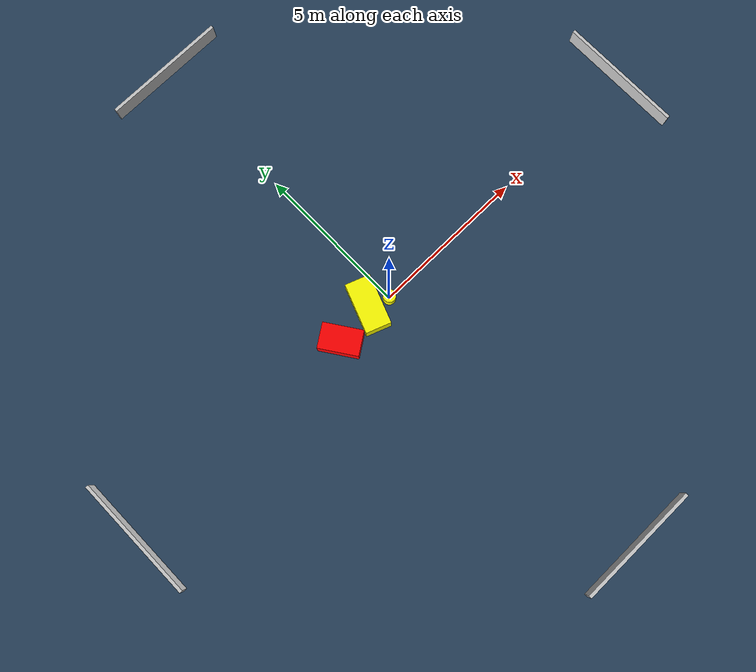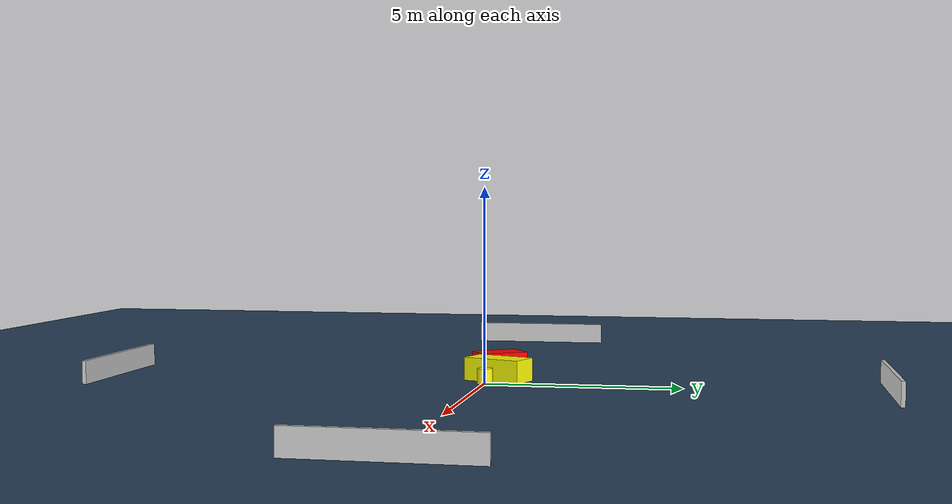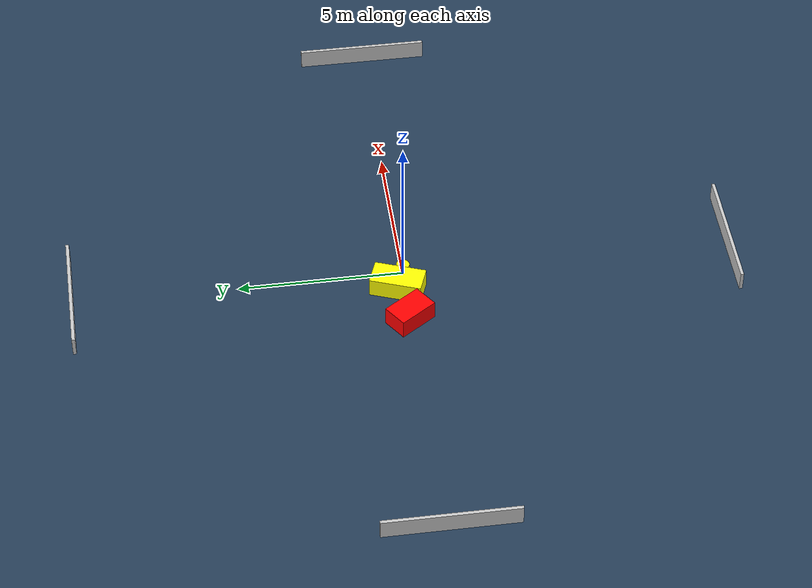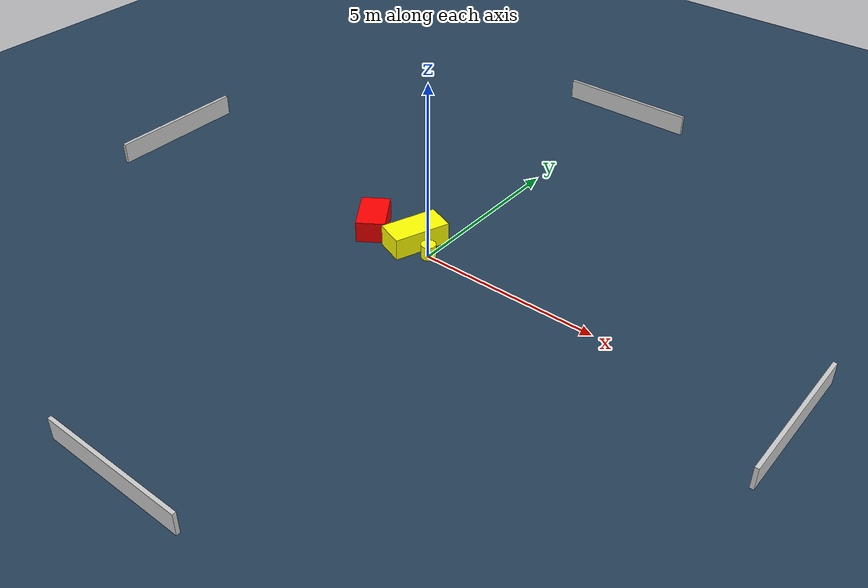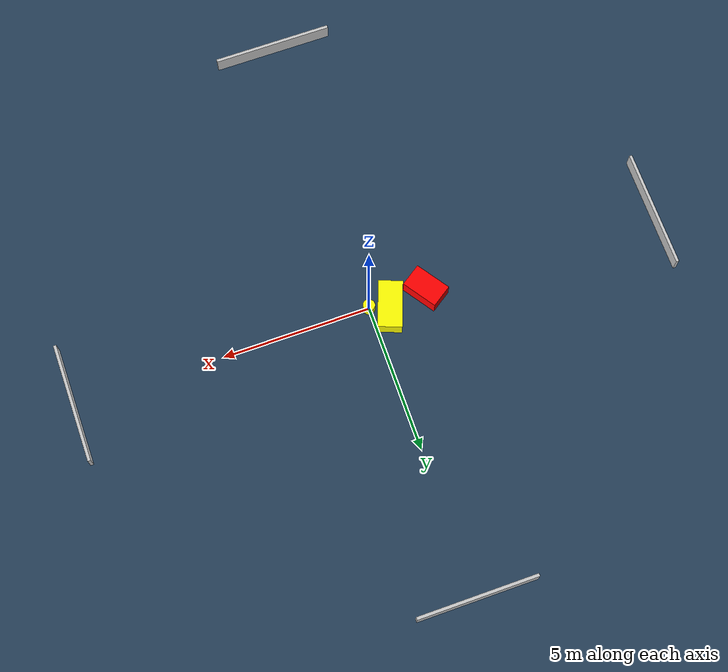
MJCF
<?xml version="1.0" ?>
<mujoco model="generated_environment">
  <option timestep="0.01" integrator="RK4" cone="elliptic"/>
  <default>
    <geom density="1"/>
  </default>
  <asset>
    <texture builtin="gradient" height="3072" name="skybox" rgb1="0.3 0.5 0.7" rgb2="0 0 0" type="skybox" width="512"/>
    <texture builtin="checker" height="300" name="groundplane" rgb1="0.2 0.3 0.4" rgb2="0.1 0.2 0.3" type="2d" width="300"/>
    <material name="groundplane" reflectance="0.2" texrepeat="5 5" texture="groundplane"/>
  </asset>
  <worldbody>
    <light dir="0 0 -1" directional="true" pos="0 0 1.5"/>
    <geom condim="3" friction="0.5 0.005 0.001" material="groundplane" name="floor" pos="0 0 0" size="0 0 0.05" type="plane"/>
    <body name="walls">
      <geom name="wall_1" condim="4" pos="-10.0 0.0 0.3" rgba="0.800000011920929 0.800000011920929 0.800000011920929 1.0" size="0.05 2.0 0.3" type="box"/>
      <geom name="wall_2" condim="4" pos="10.0 0.0 0.3" rgba="0.800000011920929 0.800000011920929 0.800000011920929 1.0" size="0.05 2.0 0.3" type="box"/>
      <geom name="wall_3" condim="4" pos="0.0 -10.0 0.3" rgba="0.800000011920929 0.800000011920929 0.800000011920929 1.0" size="2.0 0.05 0.3" type="box"/>
      <geom name="wall_4" condim="4" pos="0.0 10.0 0.3" rgba="0.800000011920929 0.800000011920929 0.800000011920929 1.0" size="2.0 0.05 0.3" type="box"/>
    </body>
    <body name="robot">
      <joint name="joint_x" type="slide" pos="0 0 0" axis="1 0 0"/>
      <joint name="joint_y" type="slide" pos="0 0 0" axis="0 1 0"/>
      <geom name="robot" type="cylinder" pos="0.0 0.0 0.2" size="0.2 0.2 0.0" mass="5.0" friction="1.0 0.005 0.0001" condim="4" rgba="1.0 1.0 0.0 1.0"/>
    </body>
    <body name="obstacle_1_movable">
      <geom name="obstacle_1_movable" condim="4" pos="-0.6451013288856715 0.24079331810197585 0.3" euler="0 0 159.45963674549665" friction="0.0 0.005 0.001" rgba="1.0 1.0 0.0 1.0" size="0.40266090640823904 0.790430875280423 0.3" type="box" mass="0.1"/>
      <joint type="free"/>
    </body>
    <body name="obstacle_2_static">
      <geom name="obstacle_2_static" condim="4" pos="-1.951646598487407 0.04467535132118023 0.3" euler="0 0 34.29986869961536" friction="0.0 0.005 0.001" rgba="1.0 0.0 0.0 1.0" size="0.39622538417214914 0.6264710449039002 0.3" type="box"/>
    </body>
  </worldbody>
  <actuator>
    <motor name="actuator_x" joint="joint_x" gear="1" ctrlrange="-1 1"/>
    <motor name="actuator_y" joint="joint_y" gear="1" ctrlrange="-1 1"/>
  </actuator>
</mujoco>
